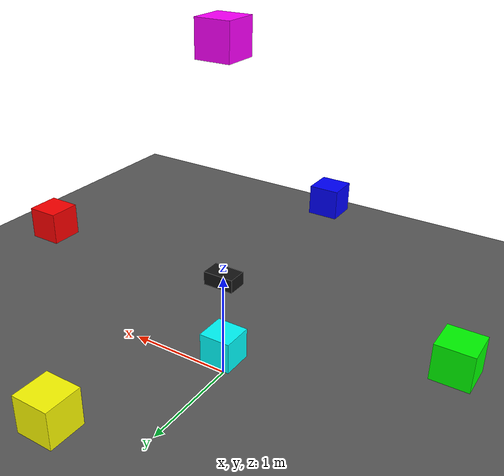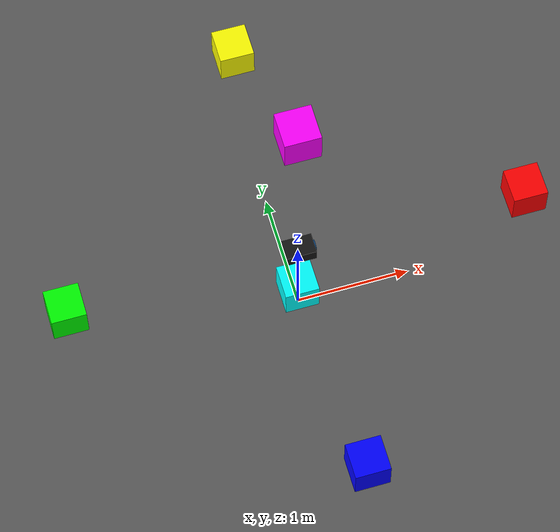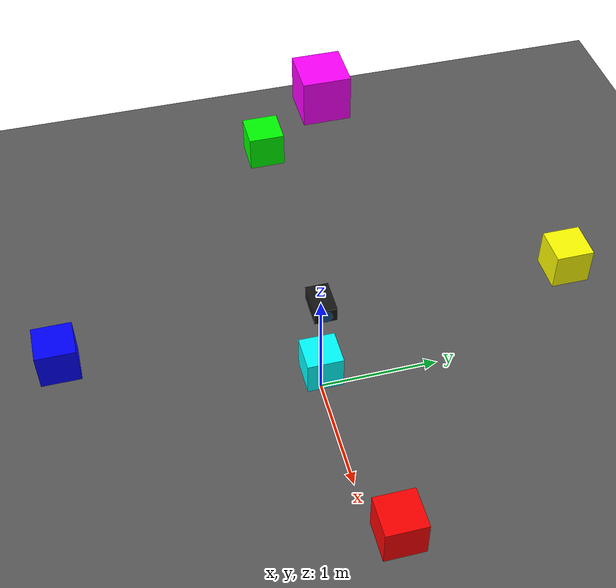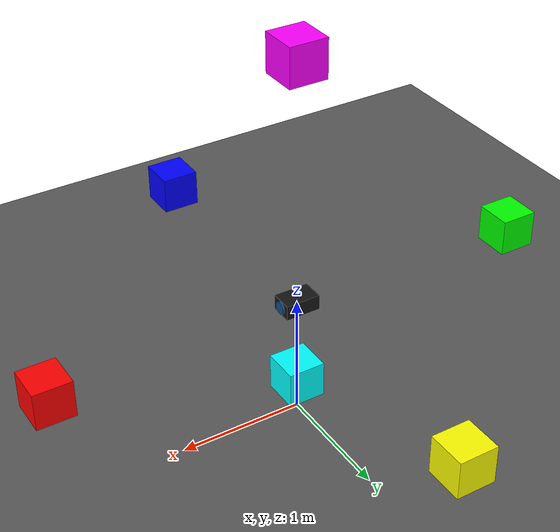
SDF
<?xml version="1.0"?>
<sdf version="1.8">
  <world name="depth_camera_cube_test">
    <physics name="default" type="ignored">
      <max_step_size>0.001</max_step_size>
      <real_time_factor>1.0</real_time_factor>
    </physics>

    <plugin filename="ignition-gazebo-physics-system"
            name="gz::sim::systems::Physics"/>
    <plugin filename="ignition-gazebo-sensors-system"
            name="gz::sim::systems::Sensors">
      <render_engine>ogre2</render_engine>
    </plugin>
    <plugin filename="ignition-gazebo-user-commands-system"
            name="gz::sim::systems::UserCommands"/>
    <plugin filename="ignition-gazebo-scene-broadcaster-system"
            name="gz::sim::systems::SceneBroadcaster"/>

    <light name="sun" type="directional">
      <pose>0 0 10 0 0 0</pose>
      <direction>-0.5 0.1 -0.9</direction>
      <diffuse>0.8 0.8 0.8 1</diffuse>
      <specular>0.2 0.2 0.2 1</specular>
    </light>

    <model name="ground_plane">
      <static>true</static>
      <link name="link">
        <collision name="collision">
          <geometry><plane><normal>0 0 1</normal><size>20 20</size></plane></geometry>
        </collision>
        <visual name="visual">
          <geometry><plane><normal>0 0 1</normal><size>20 20</size></plane></geometry>
          <material><ambient>0.35 0.35 0.35 1</ambient><diffuse>0.35 0.35 0.35 1</diffuse></material>
        </visual>
      </link>
    </model>

    <!-- Gazebo camera optical axis is +X. It is fixed at (0, 0, 1). -->
    <model name="depth_camera">
      <static>true</static>
      <pose>0 0 1 0 0 0</pose>
      <link name="link">
        <!-- A visible enclosure; the sensor itself has no renderable geometry. -->
        <visual name="camera_body">
          <geometry><box><size>0.28 0.18 0.12</size></box></geometry>
          <material><ambient>0.08 0.08 0.08 1</ambient><diffuse>0.08 0.08 0.08 1</diffuse></material>
        </visual>
        <visual name="lens">
          <pose>0.146 0 0 0 1.5708 0</pose>
          <geometry><cylinder><radius>0.05</radius><length>0.012</length></cylinder></geometry>
          <material><ambient>0.05 0.30 0.55 1</ambient><diffuse>0.05 0.30 0.55 1</diffuse></material>
        </visual>
        <sensor name="depth_sensor" type="depth_camera">
          <!-- Put the optical center just in front of the visible enclosure. -->
          <pose>0.155 0 0 0 0 0</pose>
          <always_on>true</always_on>
          <update_rate>30</update_rate>
          <visualize>true</visualize>
          <topic>/depth_camera/image</topic>
          <camera>
            <horizontal_fov>1.0472</horizontal_fov>
            <image><width>640</width><height>480</height><format>R8G8B8</format></image>
            <clip><near>0.1</near><far>8.0</far></clip>
          </camera>
        </sensor>
        <sensor name="rgb_sensor" type="camera">
          <pose>0.155 0 0 0 0 0</pose>
          <always_on>true</always_on>
          <update_rate>30</update_rate>
          <topic>/rgb_camera/image</topic>
          <camera>
            <horizontal_fov>1.0472</horizontal_fov>
            <image><width>640</width><height>480</height><format>R8G8B8</format></image>
            <clip><near>0.1</near><far>8.0</far></clip>
          </camera>
        </sensor>
      </link>
    </model>

    <!-- Six 0.3 m cubes centered 2 m from the camera, one per camera axis. -->
    <model name="cube_front"><static>true</static><pose>2 0 1 0 0 0</pose><link name="link"><collision name="collision"><geometry><box><size>0.3 0.3 0.3</size></box></geometry></collision><visual name="visual"><geometry><box><size>0.3 0.3 0.3</size></box></geometry><material><ambient>1 0 0 1</ambient><diffuse>1 0 0 1</diffuse></material></visual></link></model>
    <model name="cube_back"><static>true</static><pose>-2 0 1 0 0 0</pose><link name="link"><collision name="collision"><geometry><box><size>0.3 0.3 0.3</size></box></geometry></collision><visual name="visual"><geometry><box><size>0.3 0.3 0.3</size></box></geometry><material><ambient>0 1 0 1</ambient><diffuse>0 1 0 1</diffuse></material></visual></link></model>
    <model name="cube_left"><static>true</static><pose>0 -2 1 0 0 0</pose><link name="link"><collision name="collision"><geometry><box><size>0.3 0.3 0.3</size></box></geometry></collision><visual name="visual"><geometry><box><size>0.3 0.3 0.3</size></box></geometry><material><ambient>0 0 1 1</ambient><diffuse>0 0 1 1</diffuse></material></visual></link></model>
    <model name="cube_right"><static>true</static><pose>0 2 1 0 0 0</pose><link name="link"><collision name="collision"><geometry><box><size>0.3 0.3 0.3</size></box></geometry></collision><visual name="visual"><geometry><box><size>0.3 0.3 0.3</size></box></geometry><material><ambient>1 1 0 1</ambient><diffuse>1 1 0 1</diffuse></material></visual></link></model>
    <model name="cube_up"><static>true</static><pose>0 0 3 0 0 0</pose><link name="link"><collision name="collision"><geometry><box><size>0.3 0.3 0.3</size></box></geometry></collision><visual name="visual"><geometry><box><size>0.3 0.3 0.3</size></box></geometry><material><ambient>1 0 1 1</ambient><diffuse>1 0 1 1</diffuse></material></visual></link></model>
    <model name="cube_down"><static>true</static><pose>0 0 0.3 0 0 0</pose><link name="link"><collision name="collision"><geometry><box><size>0.3 0.3 0.3</size></box></geometry></collision><visual name="visual"><geometry><box><size>0.3 0.3 0.3</size></box></geometry><material><ambient>0 1 1 1</ambient><diffuse>0 1 1 1</diffuse></material></visual></link></model>
  </world>
</sdf>
